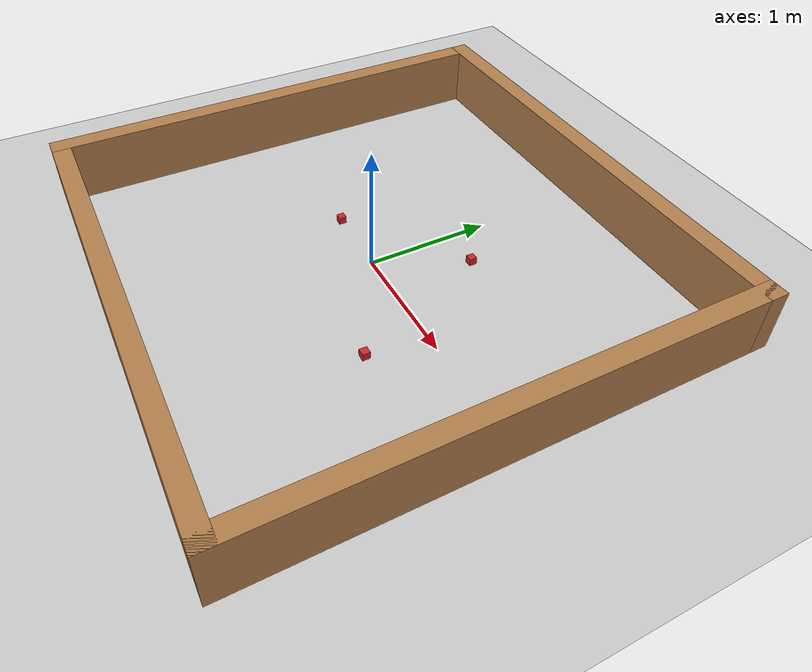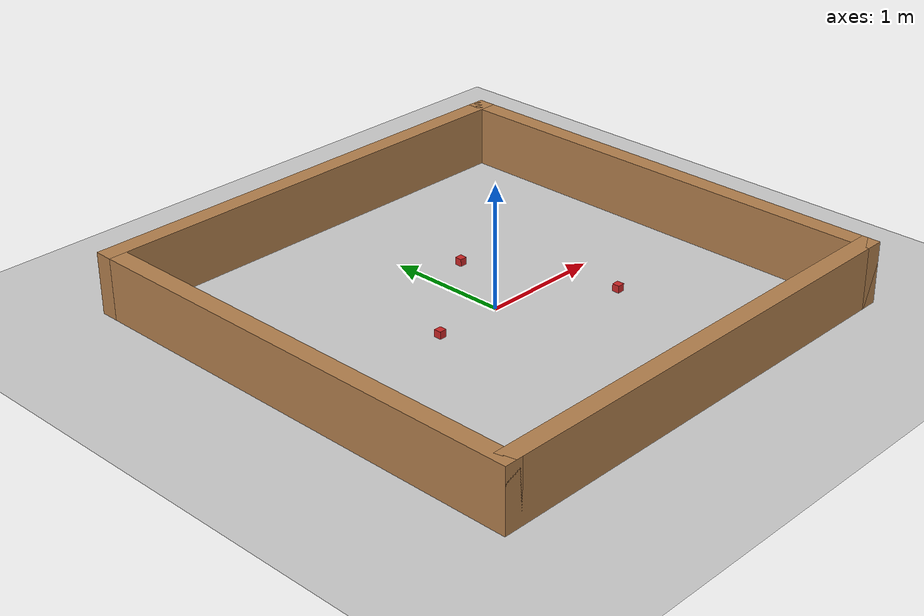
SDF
<sdf version="1.6">
 <world name="default">
  <plugin name="ros_link_attacher_plugin" filename="libgazebo_ros_link_attacher.so"/>
  <light name="sun" type="directional">
   <pose>0 0 10 0 -0 0</pose>
   <diffuse>0.8 0.8 0.8 1</diffuse>
   <specular>0.2 0.2 0.2 1</specular>
   <attenuation>
    <range>1000</range>
    <constant>0.9</constant>
    <linear>0.01</linear>
    <quadratic>0.001</quadratic>
   </attenuation>
   <direction>-0.5 0.1 -0.9</direction>
  </light>
  <model name="ground_plane">
   <static>1</static>
   <link name="link">
    <collision name="collision">
     <geometry><plane><normal>0 0 1</normal><size>100 100</size></plane></geometry>
     <surface>
      <contact><collide_bitmask>65535</collide_bitmask></contact>
      <friction><ode><mu>100</mu><mu2>50</mu2></ode></friction>
     </surface>
    </collision>
    <visual name="visual">
     <cast_shadows>0</cast_shadows>
     <geometry><plane><normal>0 0 1</normal><size>100 100</size></plane></geometry>
     <material>
      <script><uri>file://media/materials/scripts/gazebo.material</uri><name>Gazebo/Grey</name></script>
     </material>
    </visual>
   </link>
  </model>
  <gravity>0 0 -9.8</gravity>
  <magnetic_field>6e-06 2.3e-05 -4.2e-05</magnetic_field>
  <atmosphere type="adiabatic"/>
  <physics name="default_physics" default="0" type="ode">
   <max_step_size>0.001</max_step_size>
   <real_time_factor>1</real_time_factor>
   <real_time_update_rate>1000</real_time_update_rate>
  </physics>
  <scene><ambient>0.4 0.4 0.4 1</ambient><background>0.7 0.7 0.7 1</background><shadows>0</shadows></scene>
  <audio><device>default</device></audio>
  <spherical_coordinates>
   <surface_model>EARTH_WGS84</surface_model>
   <latitude_deg>0</latitude_deg>
   <longitude_deg>0</longitude_deg>
   <elevation>0</elevation>
   <heading_deg>0</heading_deg>
  </spherical_coordinates>
  <model name="square_world_0">
   <model name="turtlebot3_square">
    <link name="Wall_0">
     <collision name="Wall_0_Collision">
      <geometry><box><size>4 0.15 0.5</size></box></geometry>
      <pose>0 0 0.25 0 -0 0</pose>
     </collision>
     <visual name="Wall_0_Visual">
      <pose>0 0 0.25 0 -0 0</pose>
      <geometry><box><size>4 0.15 0.5</size></box></geometry>
      <material>
       <script><uri>file://media/materials/scripts/gazebo.material</uri><name>Gazebo/Wood</name></script>
       <ambient>1 1 1 1</ambient>
      </material>
     </visual>
     <pose>0 1.925 0 0 -0 0</pose>
    </link>
    <link name="Wall_2">
     <collision name="Wall_2_Collision">
      <geometry><box><size>4 0.15 0.5</size></box></geometry>
      <pose>0 0 0.25 0 -0 0</pose>
     </collision>
     <visual name="Wall_2_Visual">
      <pose>0 0 0.25 0 -0 0</pose>
      <geometry><box><size>4 0.15 0.5</size></box></geometry>
      <material>
       <script><uri>file://media/materials/scripts/gazebo.material</uri><name>Gazebo/Wood</name></script>
       <ambient>1 1 1 1</ambient>
      </material>
     </visual>
     <pose>-1.925 0 0 0 0 -1.5708</pose>
    </link>
    <link name="Wall_3">
     <collision name="Wall_3_Collision">
      <geometry><box><size>4 0.15 0.5</size></box></geometry>
      <pose>0 0 0.25 0 -0 0</pose>
     </collision>
     <visual name="Wall_3_Visual">
      <pose>0 0 0.25 0 -0 0</pose>
      <geometry><box><size>4 0.15 0.5</size></box></geometry>
      <material>
       <script><uri>file://media/materials/scripts/gazebo.material</uri><name>Gazebo/Wood</name></script>
       <ambient>1 1 1 1</ambient>
      </material>
     </visual>
     <pose>0 -1.925 0 0 -0 0</pose>
    </link>
    <link name="Wall_4">
     <collision name="Wall_4_Collision">
      <geometry><box><size>4 0.15 0.5</size></box></geometry>
      <pose>0 0 0.25 0 -0 0</pose>
     </collision>
     <visual name="Wall_4_Visual">
      <pose>0 0 0.25 0 -0 0</pose>
      <geometry><box><size>4 0.15 0.5</size></box></geometry>
      <material>
       <script><uri>file://media/materials/scripts/gazebo.material</uri><name>Gazebo/Wood</name></script>
       <ambient>1 1 1 1</ambient>
      </material>
     </visual>
     <pose>1.925 0 0 0 -0 1.5708</pose>
    </link>
    <static>1</static>
   </model>
   <static>0</static>
   <pose>-0.008672 0.03648 0 0 -0 0</pose>
  </model>
  <model name="box_1">
   <link name="link">
    <inertial>
     <mass>0.000108</mass>
     <inertia><ixx>6e-08</ixx><ixy>0</ixy><ixz>0</ixz><iyy>6e-08</iyy><iyz>0</iyz><izz>6e-08</izz></inertia>
    </inertial>
    <visual name="visual">
     <geometry><box><size>0.06 0.06 0.06</size></box></geometry>
     <material>
      <script><name>Gazebo/Red</name><uri>file://media/materials/scripts/gazebo.material</uri></script>
      <shader type="vertex"><normal_map>__default__</normal_map></shader>
      <ambient>1 0 0 1</ambient>
      <diffuse>1 0 0 1</diffuse>
      <specular>0.1 0.1 0.1 1</specular>
      <emissive>0 0 0 1</emissive>
     </material>
    </visual>
    <collision name="collision">
     <geometry><box><size>0.06 0.06 0.06</size></box></geometry>
     <surface>
      <friction>
       <ode><mu>1</mu><mu2>1</mu2><fdir1>0 0 0</fdir1><slip1>0</slip1><slip2>0</slip2></ode>
       <torsional>
        <coefficient>1</coefficient>
        <patch_radius>0</patch_radius>
        <surface_radius>0</surface_radius>
        <use_patch_radius>1</use_patch_radius>
        <ode><slip>0</slip></ode>
       </torsional>
      </friction>
      <bounce><restitution_coefficient>0</restitution_coefficient><threshold>1e+06</threshold></bounce>
      <contact>
       <collide_without_contact>0</collide_without_contact>
       <collide_without_contact_bitmask>1</collide_without_contact_bitmask>
       <collide_bitmask>1</collide_bitmask>
       <ode>
        <soft_cfm>0</soft_cfm>
        <soft_erp>0.2</soft_erp>
        <kp>1e+13</kp>
        <kd>1</kd>
        <max_vel>0.01</max_vel>
        <min_depth>0</min_depth>
       </ode>
       <bullet>
        <split_impulse>1</split_impulse>
        <split_impulse_penetration_threshold>-0.01</split_impulse_penetration_threshold>
        <soft_cfm>0</soft_cfm>
        <soft_erp>0.2</soft_erp>
        <kp>1e+13</kp>
        <kd>1</kd>
       </bullet>
      </contact>
     </surface>
    </collision>
   </link>
   <static>0</static>
   <pose>-0.566655 0.005015 0.030002 -0 -5.8e-05 -0.013564</pose>
  </model>
  <model name="box_2">
   <link name="link">
    <inertial>
     <mass>0.0001</mass>
     <inertia><ixx>6e-08</ixx><ixy>0</ixy><ixz>0</ixz><iyy>6e-08</iyy><iyz>0</iyz><izz>6e-08</izz></inertia>
    </inertial>
    <visual name="visual">
     <geometry><box><size>0.06 0.06 0.06</size></box></geometry>
     <material>
      <script><name>Gazebo/Red</name><uri>file://media/materials/scripts/gazebo.material</uri></script>
      <shader type="vertex"><normal_map>__default__</normal_map></shader>
      <ambient>1 0 0 1</ambient>
      <diffuse>1 0 0 1</diffuse>
      <specular>0.1 0.1 0.1 1</specular>
      <emissive>0 0 0 1</emissive>
     </material>
    </visual>
    <collision name="collision">
     <geometry><box><size>0.06 0.06 0.06</size></box></geometry>
     <surface>
      <friction>
       <ode><mu>1</mu><mu2>1</mu2><fdir1>0 0 0</fdir1><slip1>0</slip1><slip2>0</slip2></ode>
       <torsional>
        <coefficient>1</coefficient>
        <patch_radius>0</patch_radius>
        <surface_radius>0</surface_radius>
        <use_patch_radius>1</use_patch_radius>
        <ode><slip>0</slip></ode>
       </torsional>
      </friction>
      <bounce><restitution_coefficient>0</restitution_coefficient><threshold>1e+06</threshold></bounce>
      <contact>
       <collide_without_contact>0</collide_without_contact>
       <collide_without_contact_bitmask>1</collide_without_contact_bitmask>
       <collide_bitmask>1</collide_bitmask>
       <ode>
        <soft_cfm>0</soft_cfm>
        <soft_erp>0.2</soft_erp>
        <kp>1e+13</kp>
        <kd>1</kd>
        <max_vel>0.01</max_vel>
        <min_depth>0</min_depth>
       </ode>
       <bullet>
        <split_impulse>1</split_impulse>
        <split_impulse_penetration_threshold>-0.01</split_impulse_penetration_threshold>
        <soft_cfm>0</soft_cfm>
        <soft_erp>0.2</soft_erp>
        <kp>1e+13</kp>
        <kd>1</kd>
       </bullet>
      </contact>
     </surface>
    </collision>
   </link>
   <static>0</static>
   <pose>0.344339 0.685531 0.029998 3e-06 -6.4e-05 -0.013602</pose>
  </model>
  <model name="box_3">
   <link name="link">
    <inertial>
     <mass>0.0001</mass>
     <inertia><ixx>6e-08</ixx><ixy>0</ixy><ixz>0</ixz><iyy>6e-08</iyy><iyz>0</iyz><izz>6e-08</izz></inertia>
    </inertial>
    <visual name="visual">
     <geometry><box><size>0.06 0.06 0.06</size></box></geometry>
     <material>
      <script><name>Gazebo/Red</name><uri>file://media/materials/scripts/gazebo.material</uri></script>
      <shader type="vertex"><normal_map>__default__</normal_map></shader>
      <ambient>1 0 0 1</ambient>
      <diffuse>1 0 0 1</diffuse>
      <specular>0.1 0.1 0.1 1</specular>
      <emissive>0 0 0 1</emissive>
     </material>
    </visual>
    <collision name="collision">
     <geometry><box><size>0.06 0.06 0.06</size></box></geometry>
     <surface>
      <friction>
       <ode><mu>1</mu><mu2>1</mu2><fdir1>0 0 0</fdir1><slip1>0</slip1><slip2>0</slip2></ode>
       <torsional>
        <coefficient>1</coefficient>
        <patch_radius>0</patch_radius>
        <surface_radius>0</surface_radius>
        <use_patch_radius>1</use_patch_radius>
        <ode><slip>0</slip></ode>
       </torsional>
      </friction>
      <bounce><restitution_coefficient>0</restitution_coefficient><threshold>1e+06</threshold></bounce>
      <contact>
       <collide_without_contact>0</collide_without_contact>
       <collide_without_contact_bitmask>1</collide_without_contact_bitmask>
       <collide_bitmask>1</collide_bitmask>
       <ode>
        <soft_cfm>0</soft_cfm>
        <soft_erp>0.2</soft_erp>
        <kp>1e+13</kp>
        <kd>1</kd>
        <max_vel>0.01</max_vel>
        <min_depth>0</min_depth>
       </ode>
       <bullet>
        <split_impulse>1</split_impulse>
        <split_impulse_penetration_threshold>-0.01</split_impulse_penetration_threshold>
        <soft_cfm>0</soft_cfm>
        <soft_erp>0.2</soft_erp>
        <kp>1e+13</kp>
        <kd>1</kd>
       </bullet>
      </contact>
     </surface>
    </collision>
   </link>
   <static>0</static>
   <pose>0.838495 -0.472432 0.029998 2e-06 -6.4e-05 0.002267</pose>
  </model>
 </world>
</sdf>
